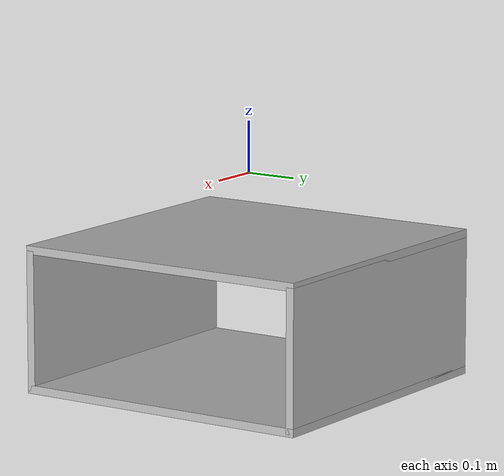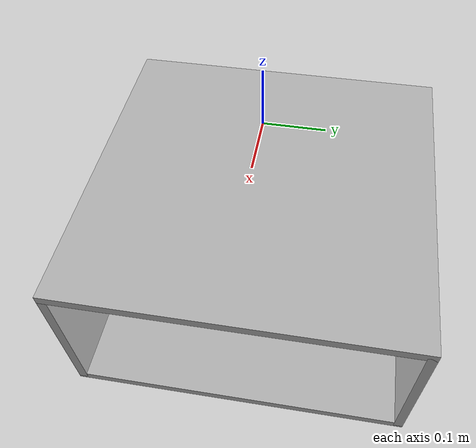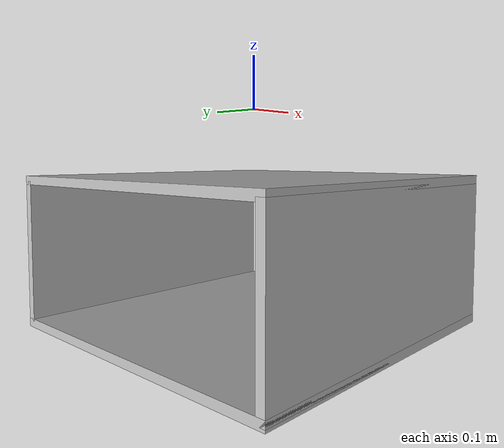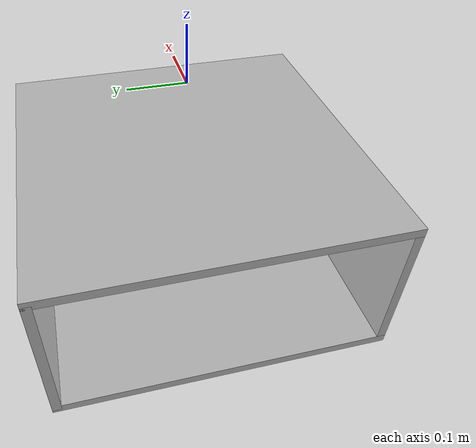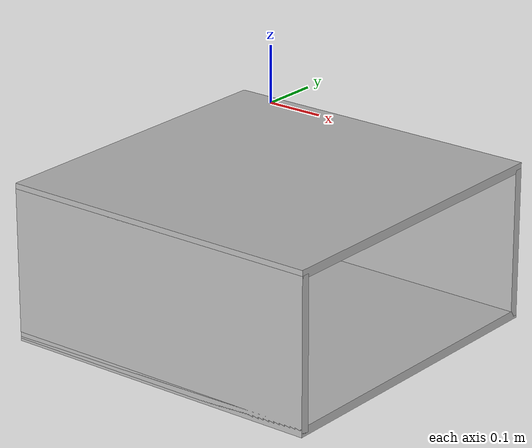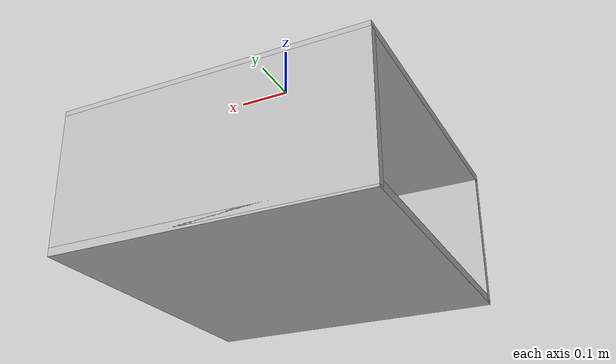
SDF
<?xml version="1.0"?>
<sdf version="1.7">
  <model name="cupboard">
    <link name="cupboard_body">
      <visual name="right_wall">
        <pose> 0 0.292 -0.268 0 0 0</pose>
        <geometry>
          <box>
            <size>0.6 0.016 0.27</size>
          </box>
        </geometry>
      </visual>
      <visual name="left_wall">
        <pose> 0 -0.292 -0.268 0 0 0</pose>
        <geometry>
          <box>
            <size>0.6 0.016 0.27</size>
          </box>
        </geometry>
      </visual>
      <collision name="right_wall">
        <pose> 0 0.292 -0.268 0 0 0</pose>
        <geometry>
          <box>
            <size>0.6 0.016 0.27</size>
          </box>
        </geometry>
      </collision>
      <collision name="left_wall">
        <pose> 0 -0.292 -0.268 0 0 0</pose>
        <geometry>
          <box>
            <size>0.6 0.016 0.27</size>
          </box>
        </geometry>
      </collision>
    </link>
    <link name="top_and_bottom">
      <visual name="bottom">
        <pose> 0 0 -0.3995 0 0 0</pose>
        <geometry>
          <box>
            <size>0.6 0.6 0.016</size>
          </box>
        </geometry>
      </visual>
      <visual name="shelf_lower">
        <pose> 0 0 -0.13115 0 0 0</pose>
        <geometry>
          <box>
            <size>0.6 0.6 0.016</size>
          </box>
        </geometry>
      </visual>
      <collision name="bottom">
        <pose> 0 0 -0.3995 0 0 0</pose>
        <geometry>
          <box>
            <size>0.6 0.6 0.016</size>
          </box>
        </geometry>
      </collision>
      <collision name="shelf_lower">
        <pose> 0 0 -0.13115 0 0 0</pose>
        <geometry>
          <box>
            <size>0.6 0.6 0.016</size>
          </box>
        </geometry>
      </collision>
    </link>
    <!-- joint between bottom_top and world -->
    <joint name="top_and_bottom_cupboard_body" type="fixed">
      <child>top_and_bottom</child>
      <parent>cupboard_body</parent>
    </joint>
  </model>
</sdf>
